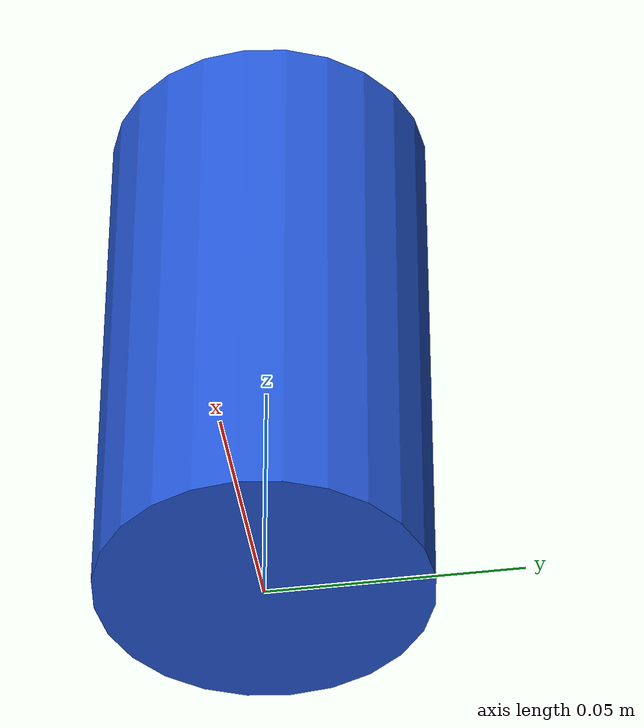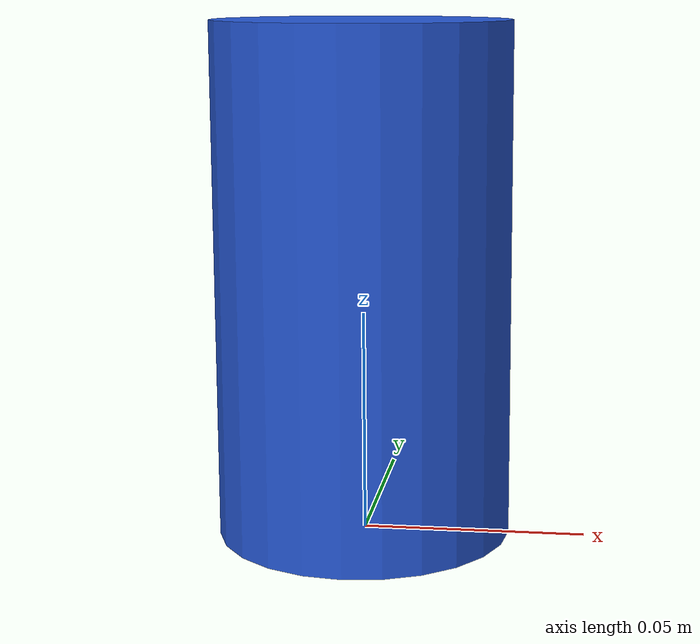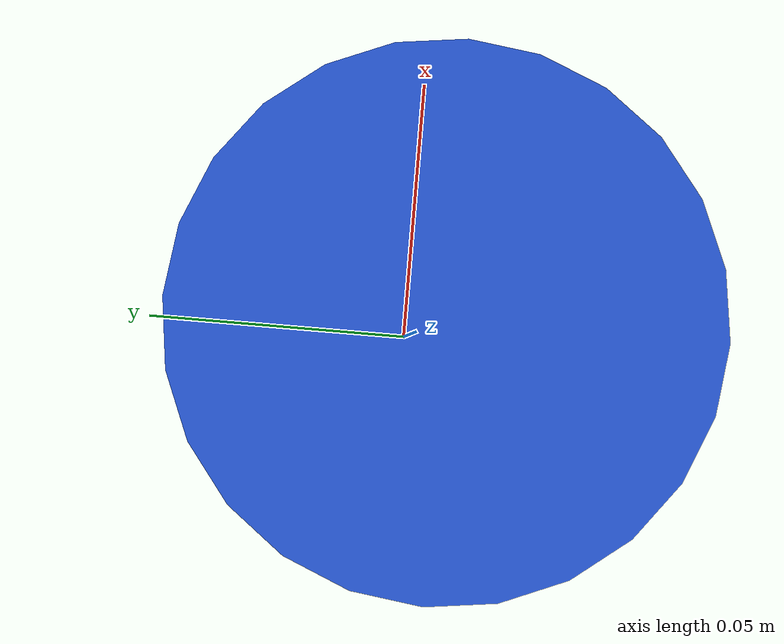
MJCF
<mujoco model="can">
  <!-- 330 ml drinks can: r 33 mm, h 115 mm, 0.36 kg full. Aluminium-smooth, so lower friction
       than the cardboard/plastic objects. Origin at the bottom centre. Self-authored (CC0). -->
  <asset>
    <material name="mat" rgba="0.15 0.35 0.85 1"/>
  </asset>
  <worldbody>
    <body name="can">
      <freejoint/>
      <geom name="body" type="cylinder" size="0.033 0.0575" pos="0 0 0.0575" mass="0.36"
            material="mat" condim="4" friction="0.7 0.01 0.0002" solimp="0.95 0.99 0.001" solref="0.008 1"/>
    </body>
  </worldbody>
</mujoco>
